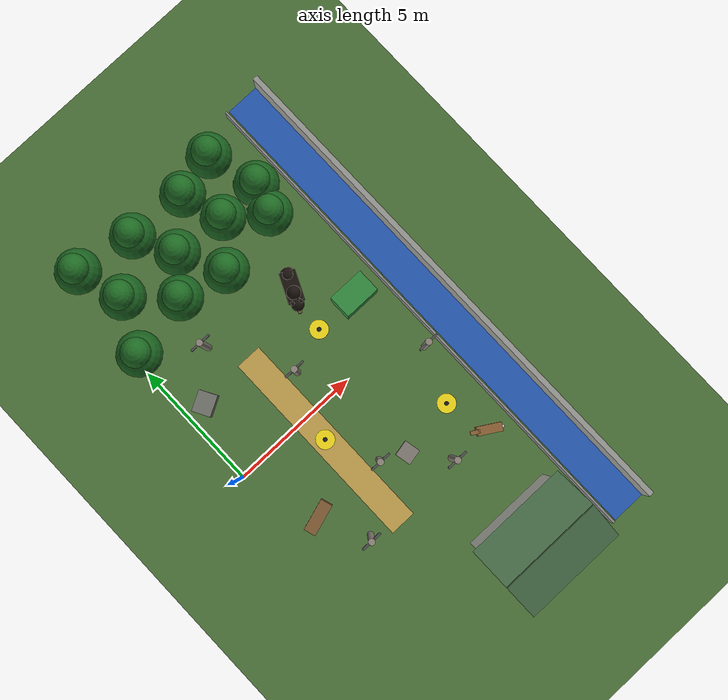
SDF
<sdf version="1.6">
 <world name="kumawatch_patrol">
  <model name="ground_plane">
   <static>true</static>
   <link name="link">
    <collision name="collision">
     <geometry><plane><normal>0 0 1</normal><size>60 60</size></plane></geometry>
     <surface><friction><ode><mu>100</mu><mu2>50</mu2></ode></friction></surface>
    </collision>
    <visual name="visual">
     <cast_shadows>false</cast_shadows>
     <geometry><plane><normal>0 0 1</normal><size>60 60</size></plane></geometry>
     <material><ambient>0.30 0.45 0.22 1</ambient><diffuse>0.30 0.45 0.22 1</diffuse></material>
    </visual>
   </link>
  </model>
  <model name="wall_east">
   <static>true</static>
   <pose>9.900 0.000 0.000 0.000 0.000 0.000</pose>
   <link name="link">
    <visual name="visual">
     <pose>0.000 0.000 0.500 0.000 0.000 0.000</pose>
     <geometry><box><size>0.200 20.000 1.000</size></box></geometry>
     <material>
      <ambient>0.600 0.600 0.580 1.00</ambient>
      <diffuse>0.600 0.600 0.580 1.00</diffuse>
      <specular>0.05 0.05 0.05 1</specular>
     </material>
    </visual>
    <collision name="collision">
     <pose>0.000 0.000 0.500 0.000 0.000 0.000</pose>
     <geometry><box><size>0.200 20.000 1.000</size></box></geometry>
    </collision>
   </link>
  </model>
  <model name="surface_school_route">
   <static>true</static>
   <pose>3.000 -1.000 0.000 0.000 0.000 0.000</pose>
   <link name="link">
    <visual name="visual">
     <pose>0.000 0.000 0.004 0.000 0.000 0.000</pose>
     <geometry><box><size>1.000 8.000 0.002</size></box></geometry>
     <material>
      <ambient>0.750 0.620 0.300 1.00</ambient>
      <diffuse>0.750 0.620 0.300 1.00</diffuse>
      <specular>0.05 0.05 0.05 1</specular>
     </material>
    </visual>
   </link>
  </model>
  <model name="surface_river">
   <static>true</static>
   <pose>9.250 0.000 0.000 0.000 0.000 0.000</pose>
   <link name="link">
    <visual name="visual">
     <pose>0.000 0.000 0.005 0.000 0.000 0.000</pose>
     <geometry><box><size>1.500 20.000 0.002</size></box></geometry>
     <material>
      <ambient>0.150 0.350 0.700 1.00</ambient>
      <diffuse>0.150 0.350 0.700 1.00</diffuse>
      <specular>0.05 0.05 0.05 1</specular>
     </material>
    </visual>
   </link>
  </model>
  <model name="school">
   <static>true</static>
   <pose>6.000 -8.300 0.000 0.000 0.000 0.000</pose>
   <link name="link">
    <visual name="walls">
     <pose>0.000 0.000 1.500 0.000 0.000 0.000</pose>
     <geometry><box><size>3.500 2.400 3.000</size></box></geometry>
     <material>
      <ambient>0.920 0.920 0.880 1.00</ambient>
      <diffuse>0.920 0.920 0.880 1.00</diffuse>
      <specular>0.05 0.05 0.05 1</specular>
     </material>
    </visual>
    <collision name="collision">
     <pose>0.000 0.000 1.500 0.000 0.000 0.000</pose>
     <geometry><box><size>3.500 2.400 3.000</size></box></geometry>
    </collision>
    <visual name="roof_0">
     <pose>0.000 0.700 3.382 -0.500 0.000 0.000</pose>
     <geometry><box><size>3.800 1.595 0.080</size></box></geometry>
     <material>
      <ambient>0.300 0.450 0.300 1.00</ambient>
      <diffuse>0.300 0.450 0.300 1.00</diffuse>
      <specular>0.05 0.05 0.05 1</specular>
     </material>
    </visual>
    <visual name="roof_1">
     <pose>0.000 -0.700 3.382 0.500 0.000 0.000</pose>
     <geometry><box><size>3.800 1.595 0.080</size></box></geometry>
     <material>
      <ambient>0.300 0.450 0.300 1.00</ambient>
      <diffuse>0.300 0.450 0.300 1.00</diffuse>
      <specular>0.05 0.05 0.05 1</specular>
     </material>
    </visual>
   </link>
  </model>
  <model name="tree_03">
   <static>true</static>
   <pose>0.460 5.350 0.000 0.000 0.000 0.000</pose>
   <link name="link">
    <visual name="trunk">
     <pose>0.000 0.000 0.800 0.000 0.000 0.000</pose>
     <geometry><cylinder><radius>0.180</radius><length>1.600</length></cylinder></geometry>
     <material>
      <ambient>0.350 0.220 0.100 1.00</ambient>
      <diffuse>0.350 0.220 0.100 1.00</diffuse>
      <specular>0.05 0.05 0.05 1</specular>
     </material>
    </visual>
    <collision name="collision">
     <pose>0.000 0.000 0.800 0.000 0.000 0.000</pose>
     <geometry><cylinder><radius>0.180</radius><length>1.600</length></cylinder></geometry>
    </collision>
    <visual name="canopy">
     <pose>0.000 0.000 2.080 0.000 0.000 0.000</pose>
     <geometry><sphere><radius>0.800</radius></sphere></geometry>
     <material>
      <ambient>0.100 0.380 0.120 1.00</ambient>
      <diffuse>0.100 0.380 0.120 1.00</diffuse>
      <specular>0.05 0.05 0.05 1</specular>
     </material>
    </visual>
    <visual name="canopy_top">
     <pose>0.000 0.000 2.720 0.000 0.000 0.000</pose>
     <geometry><sphere><radius>0.520</radius></sphere></geometry>
     <material>
      <ambient>0.120 0.420 0.140 1.00</ambient>
      <diffuse>0.120 0.420 0.140 1.00</diffuse>
      <specular>0.05 0.05 0.05 1</specular>
     </material>
    </visual>
   </link>
  </model>
  <model name="tree_04">
   <static>true</static>
   <pose>2.740 5.800 0.000 0.000 0.000 0.000</pose>
   <link name="link">
    <visual name="trunk">
     <pose>0.000 0.000 0.800 0.000 0.000 0.000</pose>
     <geometry><cylinder><radius>0.180</radius><length>1.600</length></cylinder></geometry>
     <material>
      <ambient>0.350 0.220 0.100 1.00</ambient>
      <diffuse>0.350 0.220 0.100 1.00</diffuse>
      <specular>0.05 0.05 0.05 1</specular>
     </material>
    </visual>
    <collision name="collision">
     <pose>0.000 0.000 0.800 0.000 0.000 0.000</pose>
     <geometry><cylinder><radius>0.180</radius><length>1.600</length></cylinder></geometry>
    </collision>
    <visual name="canopy">
     <pose>0.000 0.000 2.080 0.000 0.000 0.000</pose>
     <geometry><sphere><radius>0.800</radius></sphere></geometry>
     <material>
      <ambient>0.100 0.380 0.120 1.00</ambient>
      <diffuse>0.100 0.380 0.120 1.00</diffuse>
      <specular>0.05 0.05 0.05 1</specular>
     </material>
    </visual>
    <visual name="canopy_top">
     <pose>0.000 0.000 2.720 0.000 0.000 0.000</pose>
     <geometry><sphere><radius>0.520</radius></sphere></geometry>
     <material>
      <ambient>0.120 0.420 0.140 1.00</ambient>
      <diffuse>0.120 0.420 0.140 1.00</diffuse>
      <specular>0.05 0.05 0.05 1</specular>
     </material>
    </visual>
   </link>
  </model>
  <model name="tree_05">
   <static>true</static>
   <pose>4.500 5.430 0.000 0.000 0.000 0.000</pose>
   <link name="link">
    <visual name="trunk">
     <pose>0.000 0.000 0.800 0.000 0.000 0.000</pose>
     <geometry><cylinder><radius>0.180</radius><length>1.600</length></cylinder></geometry>
     <material>
      <ambient>0.350 0.220 0.100 1.00</ambient>
      <diffuse>0.350 0.220 0.100 1.00</diffuse>
      <specular>0.05 0.05 0.05 1</specular>
     </material>
    </visual>
    <collision name="collision">
     <pose>0.000 0.000 0.800 0.000 0.000 0.000</pose>
     <geometry><cylinder><radius>0.180</radius><length>1.600</length></cylinder></geometry>
    </collision>
    <visual name="canopy">
     <pose>0.000 0.000 2.080 0.000 0.000 0.000</pose>
     <geometry><sphere><radius>0.800</radius></sphere></geometry>
     <material>
      <ambient>0.100 0.380 0.120 1.00</ambient>
      <diffuse>0.100 0.380 0.120 1.00</diffuse>
      <specular>0.05 0.05 0.05 1</specular>
     </material>
    </visual>
    <visual name="canopy_top">
     <pose>0.000 0.000 2.720 0.000 0.000 0.000</pose>
     <geometry><sphere><radius>0.520</radius></sphere></geometry>
     <material>
      <ambient>0.120 0.420 0.140 1.00</ambient>
      <diffuse>0.120 0.420 0.140 1.00</diffuse>
      <specular>0.05 0.05 0.05 1</specular>
     </material>
    </visual>
   </link>
  </model>
  <model name="tree_06">
   <static>true</static>
   <pose>6.900 5.870 0.000 0.000 0.000 0.000</pose>
   <link name="link">
    <visual name="trunk">
     <pose>0.000 0.000 0.800 0.000 0.000 0.000</pose>
     <geometry><cylinder><radius>0.180</radius><length>1.600</length></cylinder></geometry>
     <material>
      <ambient>0.350 0.220 0.100 1.00</ambient>
      <diffuse>0.350 0.220 0.100 1.00</diffuse>
      <specular>0.05 0.05 0.05 1</specular>
     </material>
    </visual>
    <collision name="collision">
     <pose>0.000 0.000 0.800 0.000 0.000 0.000</pose>
     <geometry><cylinder><radius>0.180</radius><length>1.600</length></cylinder></geometry>
    </collision>
    <visual name="canopy">
     <pose>0.000 0.000 2.080 0.000 0.000 0.000</pose>
     <geometry><sphere><radius>0.800</radius></sphere></geometry>
     <material>
      <ambient>0.100 0.380 0.120 1.00</ambient>
      <diffuse>0.100 0.380 0.120 1.00</diffuse>
      <specular>0.05 0.05 0.05 1</specular>
     </material>
    </visual>
    <visual name="canopy_top">
     <pose>0.000 0.000 2.720 0.000 0.000 0.000</pose>
     <geometry><sphere><radius>0.520</radius></sphere></geometry>
     <material>
      <ambient>0.120 0.420 0.140 1.00</ambient>
      <diffuse>0.120 0.420 0.140 1.00</diffuse>
      <specular>0.05 0.05 0.05 1</specular>
     </material>
    </visual>
   </link>
  </model>
  <model name="tree_12">
   <static>true</static>
   <pose>1.340 7.150 0.000 0.000 0.000 0.000</pose>
   <link name="link">
    <visual name="trunk">
     <pose>0.000 0.000 0.800 0.000 0.000 0.000</pose>
     <geometry><cylinder><radius>0.180</radius><length>1.600</length></cylinder></geometry>
     <material>
      <ambient>0.350 0.220 0.100 1.00</ambient>
      <diffuse>0.350 0.220 0.100 1.00</diffuse>
      <specular>0.05 0.05 0.05 1</specular>
     </material>
    </visual>
    <collision name="collision">
     <pose>0.000 0.000 0.800 0.000 0.000 0.000</pose>
     <geometry><cylinder><radius>0.180</radius><length>1.600</length></cylinder></geometry>
    </collision>
    <visual name="canopy">
     <pose>0.000 0.000 2.080 0.000 0.000 0.000</pose>
     <geometry><sphere><radius>0.800</radius></sphere></geometry>
     <material>
      <ambient>0.100 0.380 0.120 1.00</ambient>
      <diffuse>0.100 0.380 0.120 1.00</diffuse>
      <specular>0.05 0.05 0.05 1</specular>
     </material>
    </visual>
    <visual name="canopy_top">
     <pose>0.000 0.000 2.720 0.000 0.000 0.000</pose>
     <geometry><sphere><radius>0.520</radius></sphere></geometry>
     <material>
      <ambient>0.120 0.420 0.140 1.00</ambient>
      <diffuse>0.120 0.420 0.140 1.00</diffuse>
      <specular>0.05 0.05 0.05 1</specular>
     </material>
    </visual>
   </link>
  </model>
  <model name="tree_13">
   <static>true</static>
   <pose>3.710 7.020 0.000 0.000 0.000 0.000</pose>
   <link name="link">
    <visual name="trunk">
     <pose>0.000 0.000 0.800 0.000 0.000 0.000</pose>
     <geometry><cylinder><radius>0.180</radius><length>1.600</length></cylinder></geometry>
     <material>
      <ambient>0.350 0.220 0.100 1.00</ambient>
      <diffuse>0.350 0.220 0.100 1.00</diffuse>
      <specular>0.05 0.05 0.05 1</specular>
     </material>
    </visual>
    <collision name="collision">
     <pose>0.000 0.000 0.800 0.000 0.000 0.000</pose>
     <geometry><cylinder><radius>0.180</radius><length>1.600</length></cylinder></geometry>
    </collision>
    <visual name="canopy">
     <pose>0.000 0.000 2.080 0.000 0.000 0.000</pose>
     <geometry><sphere><radius>0.800</radius></sphere></geometry>
     <material>
      <ambient>0.100 0.380 0.120 1.00</ambient>
      <diffuse>0.100 0.380 0.120 1.00</diffuse>
      <specular>0.05 0.05 0.05 1</specular>
     </material>
    </visual>
    <visual name="canopy_top">
     <pose>0.000 0.000 2.720 0.000 0.000 0.000</pose>
     <geometry><sphere><radius>0.520</radius></sphere></geometry>
     <material>
      <ambient>0.120 0.420 0.140 1.00</ambient>
      <diffuse>0.120 0.420 0.140 1.00</diffuse>
      <specular>0.05 0.05 0.05 1</specular>
     </material>
    </visual>
   </link>
  </model>
  <model name="tree_14">
   <static>true</static>
   <pose>5.640 6.840 0.000 0.000 0.000 0.000</pose>
   <link name="link">
    <visual name="trunk">
     <pose>0.000 0.000 0.800 0.000 0.000 0.000</pose>
     <geometry><cylinder><radius>0.180</radius><length>1.600</length></cylinder></geometry>
     <material>
      <ambient>0.350 0.220 0.100 1.00</ambient>
      <diffuse>0.350 0.220 0.100 1.00</diffuse>
      <specular>0.05 0.05 0.05 1</specular>
     </material>
    </visual>
    <collision name="collision">
     <pose>0.000 0.000 0.800 0.000 0.000 0.000</pose>
     <geometry><cylinder><radius>0.180</radius><length>1.600</length></cylinder></geometry>
    </collision>
    <visual name="canopy">
     <pose>0.000 0.000 2.080 0.000 0.000 0.000</pose>
     <geometry><sphere><radius>0.800</radius></sphere></geometry>
     <material>
      <ambient>0.100 0.380 0.120 1.00</ambient>
      <diffuse>0.100 0.380 0.120 1.00</diffuse>
      <specular>0.05 0.05 0.05 1</specular>
     </material>
    </visual>
    <visual name="canopy_top">
     <pose>0.000 0.000 2.720 0.000 0.000 0.000</pose>
     <geometry><sphere><radius>0.520</radius></sphere></geometry>
     <material>
      <ambient>0.120 0.420 0.140 1.00</ambient>
      <diffuse>0.120 0.420 0.140 1.00</diffuse>
      <specular>0.05 0.05 0.05 1</specular>
     </material>
    </visual>
   </link>
  </model>
  <model name="tree_15">
   <static>true</static>
   <pose>7.250 6.920 0.000 0.000 0.000 0.000</pose>
   <link name="link">
    <visual name="trunk">
     <pose>0.000 0.000 0.800 0.000 0.000 0.000</pose>
     <geometry><cylinder><radius>0.180</radius><length>1.600</length></cylinder></geometry>
     <material>
      <ambient>0.350 0.220 0.100 1.00</ambient>
      <diffuse>0.350 0.220 0.100 1.00</diffuse>
      <specular>0.05 0.05 0.05 1</specular>
     </material>
    </visual>
    <collision name="collision">
     <pose>0.000 0.000 0.800 0.000 0.000 0.000</pose>
     <geometry><cylinder><radius>0.180</radius><length>1.600</length></cylinder></geometry>
    </collision>
    <visual name="canopy">
     <pose>0.000 0.000 2.080 0.000 0.000 0.000</pose>
     <geometry><sphere><radius>0.800</radius></sphere></geometry>
     <material>
      <ambient>0.100 0.380 0.120 1.00</ambient>
      <diffuse>0.100 0.380 0.120 1.00</diffuse>
      <specular>0.05 0.05 0.05 1</specular>
     </material>
    </visual>
    <visual name="canopy_top">
     <pose>0.000 0.000 2.720 0.000 0.000 0.000</pose>
     <geometry><sphere><radius>0.520</radius></sphere></geometry>
     <material>
      <ambient>0.120 0.420 0.140 1.00</ambient>
      <diffuse>0.120 0.420 0.140 1.00</diffuse>
      <specular>0.05 0.05 0.05 1</specular>
     </material>
    </visual>
   </link>
  </model>
  <model name="tree_21">
   <static>true</static>
   <pose>0.820 8.830 0.000 0.000 0.000 0.000</pose>
   <link name="link">
    <visual name="trunk">
     <pose>0.000 0.000 0.800 0.000 0.000 0.000</pose>
     <geometry><cylinder><radius>0.180</radius><length>1.600</length></cylinder></geometry>
     <material>
      <ambient>0.350 0.220 0.100 1.00</ambient>
      <diffuse>0.350 0.220 0.100 1.00</diffuse>
      <specular>0.05 0.05 0.05 1</specular>
     </material>
    </visual>
    <collision name="collision">
     <pose>0.000 0.000 0.800 0.000 0.000 0.000</pose>
     <geometry><cylinder><radius>0.180</radius><length>1.600</length></cylinder></geometry>
    </collision>
    <visual name="canopy">
     <pose>0.000 0.000 2.080 0.000 0.000 0.000</pose>
     <geometry><sphere><radius>0.800</radius></sphere></geometry>
     <material>
      <ambient>0.100 0.380 0.120 1.00</ambient>
      <diffuse>0.100 0.380 0.120 1.00</diffuse>
      <specular>0.05 0.05 0.05 1</specular>
     </material>
    </visual>
    <visual name="canopy_top">
     <pose>0.000 0.000 2.720 0.000 0.000 0.000</pose>
     <geometry><sphere><radius>0.520</radius></sphere></geometry>
     <material>
      <ambient>0.120 0.420 0.140 1.00</ambient>
      <diffuse>0.120 0.420 0.140 1.00</diffuse>
      <specular>0.05 0.05 0.05 1</specular>
     </material>
    </visual>
   </link>
  </model>
  <model name="tree_22">
   <static>true</static>
   <pose>2.980 8.470 0.000 0.000 0.000 0.000</pose>
   <link name="link">
    <visual name="trunk">
     <pose>0.000 0.000 0.800 0.000 0.000 0.000</pose>
     <geometry><cylinder><radius>0.180</radius><length>1.600</length></cylinder></geometry>
     <material>
      <ambient>0.350 0.220 0.100 1.00</ambient>
      <diffuse>0.350 0.220 0.100 1.00</diffuse>
      <specular>0.05 0.05 0.05 1</specular>
     </material>
    </visual>
    <collision name="collision">
     <pose>0.000 0.000 0.800 0.000 0.000 0.000</pose>
     <geometry><cylinder><radius>0.180</radius><length>1.600</length></cylinder></geometry>
    </collision>
    <visual name="canopy">
     <pose>0.000 0.000 2.080 0.000 0.000 0.000</pose>
     <geometry><sphere><radius>0.800</radius></sphere></geometry>
     <material>
      <ambient>0.100 0.380 0.120 1.00</ambient>
      <diffuse>0.100 0.380 0.120 1.00</diffuse>
      <specular>0.05 0.05 0.05 1</specular>
     </material>
    </visual>
    <visual name="canopy_top">
     <pose>0.000 0.000 2.720 0.000 0.000 0.000</pose>
     <geometry><sphere><radius>0.520</radius></sphere></geometry>
     <material>
      <ambient>0.120 0.420 0.140 1.00</ambient>
      <diffuse>0.120 0.420 0.140 1.00</diffuse>
      <specular>0.05 0.05 0.05 1</specular>
     </material>
    </visual>
   </link>
  </model>
  <model name="tree_23">
   <static>true</static>
   <pose>5.180 8.370 0.000 0.000 0.000 0.000</pose>
   <link name="link">
    <visual name="trunk">
     <pose>0.000 0.000 0.800 0.000 0.000 0.000</pose>
     <geometry><cylinder><radius>0.180</radius><length>1.600</length></cylinder></geometry>
     <material>
      <ambient>0.350 0.220 0.100 1.00</ambient>
      <diffuse>0.350 0.220 0.100 1.00</diffuse>
      <specular>0.05 0.05 0.05 1</specular>
     </material>
    </visual>
    <collision name="collision">
     <pose>0.000 0.000 0.800 0.000 0.000 0.000</pose>
     <geometry><cylinder><radius>0.180</radius><length>1.600</length></cylinder></geometry>
    </collision>
    <visual name="canopy">
     <pose>0.000 0.000 2.080 0.000 0.000 0.000</pose>
     <geometry><sphere><radius>0.800</radius></sphere></geometry>
     <material>
      <ambient>0.100 0.380 0.120 1.00</ambient>
      <diffuse>0.100 0.380 0.120 1.00</diffuse>
      <specular>0.05 0.05 0.05 1</specular>
     </material>
    </visual>
    <visual name="canopy_top">
     <pose>0.000 0.000 2.720 0.000 0.000 0.000</pose>
     <geometry><sphere><radius>0.520</radius></sphere></geometry>
     <material>
      <ambient>0.120 0.420 0.140 1.00</ambient>
      <diffuse>0.120 0.420 0.140 1.00</diffuse>
      <specular>0.05 0.05 0.05 1</specular>
     </material>
    </visual>
   </link>
  </model>
  <model name="tree_24">
   <static>true</static>
   <pose>6.730 8.750 0.000 0.000 0.000 0.000</pose>
   <link name="link">
    <visual name="trunk">
     <pose>0.000 0.000 0.800 0.000 0.000 0.000</pose>
     <geometry><cylinder><radius>0.180</radius><length>1.600</length></cylinder></geometry>
     <material>
      <ambient>0.350 0.220 0.100 1.00</ambient>
      <diffuse>0.350 0.220 0.100 1.00</diffuse>
      <specular>0.05 0.05 0.05 1</specular>
     </material>
    </visual>
    <collision name="collision">
     <pose>0.000 0.000 0.800 0.000 0.000 0.000</pose>
     <geometry><cylinder><radius>0.180</radius><length>1.600</length></cylinder></geometry>
    </collision>
    <visual name="canopy">
     <pose>0.000 0.000 2.080 0.000 0.000 0.000</pose>
     <geometry><sphere><radius>0.800</radius></sphere></geometry>
     <material>
      <ambient>0.100 0.380 0.120 1.00</ambient>
      <diffuse>0.100 0.380 0.120 1.00</diffuse>
      <specular>0.05 0.05 0.05 1</specular>
     </material>
    </visual>
    <visual name="canopy_top">
     <pose>0.000 0.000 2.720 0.000 0.000 0.000</pose>
     <geometry><sphere><radius>0.520</radius></sphere></geometry>
     <material>
      <ambient>0.120 0.420 0.140 1.00</ambient>
      <diffuse>0.120 0.420 0.140 1.00</diffuse>
      <specular>0.05 0.05 0.05 1</specular>
     </material>
    </visual>
   </link>
  </model>
  <model name="pole_02">
   <static>true</static>
   <pose>1.900 -4.500 0.000 0.000 0.000 0.000</pose>
   <link name="link">
    <visual name="pole">
     <pose>0.000 0.000 1.200 0.000 0.000 0.000</pose>
     <geometry><cylinder><radius>0.120</radius><length>2.400</length></cylinder></geometry>
     <material>
      <ambient>0.550 0.520 0.480 1.00</ambient>
      <diffuse>0.550 0.520 0.480 1.00</diffuse>
      <specular>0.05 0.05 0.05 1</specular>
     </material>
    </visual>
    <collision name="collision">
     <pose>0.000 0.000 1.200 0.000 0.000 0.000</pose>
     <geometry><cylinder><radius>0.120</radius><length>2.400</length></cylinder></geometry>
    </collision>
    <visual name="crossarm">
     <pose>0.000 0.000 2.200 0.000 0.000 0.000</pose>
     <geometry><box><size>0.800 0.080 0.080</size></box></geometry>
     <material>
      <ambient>0.300 0.300 0.300 1.00</ambient>
      <diffuse>0.300 0.300 0.300 1.00</diffuse>
      <specular>0.05 0.05 0.05 1</specular>
     </material>
    </visual>
   </link>
  </model>
  <model name="pole_03">
   <static>true</static>
   <pose>5.800 -4.500 0.000 0.000 0.000 0.000</pose>
   <link name="link">
    <visual name="pole">
     <pose>0.000 0.000 1.200 0.000 0.000 0.000</pose>
     <geometry><cylinder><radius>0.120</radius><length>2.400</length></cylinder></geometry>
     <material>
      <ambient>0.550 0.520 0.480 1.00</ambient>
      <diffuse>0.550 0.520 0.480 1.00</diffuse>
      <specular>0.05 0.05 0.05 1</specular>
     </material>
    </visual>
    <collision name="collision">
     <pose>0.000 0.000 1.200 0.000 0.000 0.000</pose>
     <geometry><cylinder><radius>0.120</radius><length>2.400</length></cylinder></geometry>
    </collision>
    <visual name="crossarm">
     <pose>0.000 0.000 2.200 0.000 0.000 0.000</pose>
     <geometry><box><size>0.800 0.080 0.080</size></box></geometry>
     <material>
      <ambient>0.300 0.300 0.300 1.00</ambient>
      <diffuse>0.300 0.300 0.300 1.00</diffuse>
      <specular>0.05 0.05 0.05 1</specular>
     </material>
    </visual>
   </link>
  </model>
  <model name="pole_04">
   <static>true</static>
   <pose>3.900 -2.800 0.000 0.000 0.000 0.000</pose>
   <link name="link">
    <visual name="pole">
     <pose>0.000 0.000 1.200 0.000 0.000 0.000</pose>
     <geometry><cylinder><radius>0.120</radius><length>2.400</length></cylinder></geometry>
     <material>
      <ambient>0.550 0.520 0.480 1.00</ambient>
      <diffuse>0.550 0.520 0.480 1.00</diffuse>
      <specular>0.05 0.05 0.05 1</specular>
     </material>
    </visual>
    <collision name="collision">
     <pose>0.000 0.000 1.200 0.000 0.000 0.000</pose>
     <geometry><cylinder><radius>0.120</radius><length>2.400</length></cylinder></geometry>
    </collision>
    <visual name="crossarm">
     <pose>0.000 0.000 2.200 0.000 0.000 0.000</pose>
     <geometry><box><size>0.800 0.080 0.080</size></box></geometry>
     <material>
      <ambient>0.300 0.300 0.300 1.00</ambient>
      <diffuse>0.300 0.300 0.300 1.00</diffuse>
      <specular>0.05 0.05 0.05 1</specular>
     </material>
    </visual>
   </link>
  </model>
  <model name="pole_05">
   <static>true</static>
   <pose>3.900 1.400 0.000 0.000 0.000 0.000</pose>
   <link name="link">
    <visual name="pole">
     <pose>0.000 0.000 1.200 0.000 0.000 0.000</pose>
     <geometry><cylinder><radius>0.120</radius><length>2.400</length></cylinder></geometry>
     <material>
      <ambient>0.550 0.520 0.480 1.00</ambient>
      <diffuse>0.550 0.520 0.480 1.00</diffuse>
      <specular>0.05 0.05 0.05 1</specular>
     </material>
    </visual>
    <collision name="collision">
     <pose>0.000 0.000 1.200 0.000 0.000 0.000</pose>
     <geometry><cylinder><radius>0.120</radius><length>2.400</length></cylinder></geometry>
    </collision>
    <visual name="crossarm">
     <pose>0.000 0.000 2.200 0.000 0.000 0.000</pose>
     <geometry><box><size>0.800 0.080 0.080</size></box></geometry>
     <material>
      <ambient>0.300 0.300 0.300 1.00</ambient>
      <diffuse>0.300 0.300 0.300 1.00</diffuse>
      <specular>0.05 0.05 0.05 1</specular>
     </material>
    </visual>
   </link>
  </model>
  <model name="pole_08">
   <static>true</static>
   <pose>2.200 4.200 0.000 0.000 0.000 0.000</pose>
   <link name="link">
    <visual name="pole">
     <pose>0.000 0.000 1.200 0.000 0.000 0.000</pose>
     <geometry><cylinder><radius>0.120</radius><length>2.400</length></cylinder></geometry>
     <material>
      <ambient>0.550 0.520 0.480 1.00</ambient>
      <diffuse>0.550 0.520 0.480 1.00</diffuse>
      <specular>0.05 0.05 0.05 1</specular>
     </material>
    </visual>
    <collision name="collision">
     <pose>0.000 0.000 1.200 0.000 0.000 0.000</pose>
     <geometry><cylinder><radius>0.120</radius><length>2.400</length></cylinder></geometry>
    </collision>
    <visual name="crossarm">
     <pose>0.000 0.000 2.200 0.000 0.000 0.000</pose>
     <geometry><box><size>0.800 0.080 0.080</size></box></geometry>
     <material>
      <ambient>0.300 0.300 0.300 1.00</ambient>
      <diffuse>0.300 0.300 0.300 1.00</diffuse>
      <specular>0.05 0.05 0.05 1</specular>
     </material>
    </visual>
   </link>
  </model>
  <model name="pole_09">
   <static>true</static>
   <pose>7.800 -1.000 0.000 0.000 0.000 0.000</pose>
   <link name="link">
    <visual name="pole">
     <pose>0.000 0.000 1.200 0.000 0.000 0.000</pose>
     <geometry><cylinder><radius>0.120</radius><length>2.400</length></cylinder></geometry>
     <material>
      <ambient>0.550 0.520 0.480 1.00</ambient>
      <diffuse>0.550 0.520 0.480 1.00</diffuse>
      <specular>0.05 0.05 0.05 1</specular>
     </material>
    </visual>
    <collision name="collision">
     <pose>0.000 0.000 1.200 0.000 0.000 0.000</pose>
     <geometry><cylinder><radius>0.120</radius><length>2.400</length></cylinder></geometry>
    </collision>
    <visual name="crossarm">
     <pose>0.000 0.000 2.200 0.000 0.000 0.000</pose>
     <geometry><box><size>0.800 0.080 0.080</size></box></geometry>
     <material>
      <ambient>0.300 0.300 0.300 1.00</ambient>
      <diffuse>0.300 0.300 0.300 1.00</diffuse>
      <specular>0.05 0.05 0.05 1</specular>
     </material>
    </visual>
   </link>
  </model>
  <model name="river_fence">
   <static>true</static>
   <pose>8.350 0.000 0.000 0.000 0.000 1.571</pose>
   <link name="link">
    <visual name="visual">
     <pose>0.000 0.000 0.300 0.000 0.000 0.000</pose>
     <geometry><box><size>19.800 0.080 0.600</size></box></geometry>
     <material>
      <ambient>0.550 0.550 0.550 1.00</ambient>
      <diffuse>0.550 0.550 0.550 1.00</diffuse>
      <specular>0.05 0.05 0.05 1</specular>
     </material>
    </visual>
    <collision name="collision">
     <pose>0.000 0.000 0.300 0.000 0.000 0.000</pose>
     <geometry><box><size>19.800 0.080 0.600</size></box></geometry>
    </collision>
   </link>
  </model>
  <model name="garbage_station">
   <static>true</static>
   <pose>7.200 2.000 0.000 0.000 0.000 0.000</pose>
   <link name="link">
    <visual name="visual">
     <pose>0.000 0.000 0.500 0.000 0.000 0.000</pose>
     <geometry><box><size>1.400 0.900 1.000</size></box></geometry>
     <material>
      <ambient>0.200 0.550 0.250 1.00</ambient>
      <diffuse>0.200 0.550 0.250 1.00</diffuse>
      <specular>0.05 0.05 0.05 1</specular>
     </material>
    </visual>
    <collision name="collision">
     <pose>0.000 0.000 0.500 0.000 0.000 0.000</pose>
     <geometry><box><size>1.400 0.900 1.000</size></box></geometry>
    </collision>
   </link>
  </model>
  <model name="rock_1">
   <static>true</static>
   <pose>0.800 2.800 0.000 0.000 0.000 0.500</pose>
   <link name="link">
    <visual name="visual">
     <pose>0.000 0.000 0.250 0.000 0.000 0.000</pose>
     <geometry><box><size>0.800 0.700 0.500</size></box></geometry>
     <material>
      <ambient>0.450 0.450 0.420 1.00</ambient>
      <diffuse>0.450 0.450 0.420 1.00</diffuse>
      <specular>0.05 0.05 0.05 1</specular>
     </material>
    </visual>
    <collision name="collision">
     <pose>0.000 0.000 0.250 0.000 0.000 0.000</pose>
     <geometry><box><size>0.800 0.700 0.500</size></box></geometry>
    </collision>
   </link>
  </model>
  <model name="rock_2">
   <static>true</static>
   <pose>4.800 -3.300 0.000 0.000 0.000 0.200</pose>
   <link name="link">
    <visual name="visual">
     <pose>0.000 0.000 0.200 0.000 0.000 0.000</pose>
     <geometry><box><size>0.600 0.600 0.400</size></box></geometry>
     <material>
      <ambient>0.500 0.480 0.450 1.00</ambient>
      <diffuse>0.500 0.480 0.450 1.00</diffuse>
      <specular>0.05 0.05 0.05 1</specular>
     </material>
    </visual>
    <collision name="collision">
     <pose>0.000 0.000 0.200 0.000 0.000 0.000</pose>
     <geometry><box><size>0.600 0.600 0.400</size></box></geometry>
    </collision>
   </link>
  </model>
  <model name="bench_2">
   <static>true</static>
   <pose>1.000 -2.800 0.000 0.000 0.000 0.300</pose>
   <link name="link">
    <visual name="visual">
     <pose>0.000 0.000 0.225 0.000 0.000 0.000</pose>
     <geometry><box><size>1.200 0.450 0.450</size></box></geometry>
     <material>
      <ambient>0.500 0.350 0.200 1.00</ambient>
      <diffuse>0.500 0.350 0.200 1.00</diffuse>
      <specular>0.05 0.05 0.05 1</specular>
     </material>
    </visual>
    <collision name="collision">
     <pose>0.000 0.000 0.225 0.000 0.000 0.000</pose>
     <geometry><box><size>1.200 0.450 0.450</size></box></geometry>
    </collision>
   </link>
  </model>
  <model name="bear_2">
   <static>true</static>
   <pose>5.800 3.700 0.000 0.000 0.000 -2.000</pose>
   <link name="link">
    <visual name="body">
     <pose>0.000 0.000 0.620 0.000 0.000 0.000</pose>
     <geometry><box><size>1.100 0.600 0.550</size></box></geometry>
     <material>
      <ambient>0.100 0.070 0.050 1.00</ambient>
      <diffuse>0.100 0.070 0.050 1.00</diffuse>
      <specular>0.05 0.05 0.05 1</specular>
     </material>
    </visual>
    <visual name="hump">
     <pose>0.250 0.000 0.880 0.000 0.000 0.000</pose>
     <geometry><sphere><radius>0.260</radius></sphere></geometry>
     <material>
      <ambient>0.100 0.070 0.050 1.00</ambient>
      <diffuse>0.100 0.070 0.050 1.00</diffuse>
      <specular>0.05 0.05 0.05 1</specular>
     </material>
    </visual>
    <visual name="rump">
     <pose>-0.420 0.000 0.660 0.000 0.000 0.000</pose>
     <geometry><sphere><radius>0.300</radius></sphere></geometry>
     <material>
      <ambient>0.100 0.070 0.050 1.00</ambient>
      <diffuse>0.100 0.070 0.050 1.00</diffuse>
      <specular>0.05 0.05 0.05 1</specular>
     </material>
    </visual>
    <visual name="head">
     <pose>0.680 0.000 0.820 0.000 0.000 0.000</pose>
     <geometry><sphere><radius>0.240</radius></sphere></geometry>
     <material>
      <ambient>0.100 0.070 0.050 1.00</ambient>
      <diffuse>0.100 0.070 0.050 1.00</diffuse>
      <specular>0.05 0.05 0.05 1</specular>
     </material>
    </visual>
    <visual name="muzzle">
     <pose>0.900 0.000 0.760 0.000 0.000 0.000</pose>
     <geometry><box><size>0.180 0.140 0.120</size></box></geometry>
     <material>
      <ambient>0.450 0.330 0.220 1.00</ambient>
      <diffuse>0.450 0.330 0.220 1.00</diffuse>
      <specular>0.05 0.05 0.05 1</specular>
     </material>
    </visual>
    <visual name="nose">
     <pose>0.990 0.000 0.780 0.000 0.000 0.000</pose>
     <geometry><sphere><radius>0.035</radius></sphere></geometry>
     <material>
      <ambient>0.020 0.020 0.020 1.00</ambient>
      <diffuse>0.020 0.020 0.020 1.00</diffuse>
      <specular>0.05 0.05 0.05 1</specular>
     </material>
    </visual>
    <visual name="ear_l">
     <pose>0.620 0.150 1.020 0.000 0.000 0.000</pose>
     <geometry><sphere><radius>0.070</radius></sphere></geometry>
     <material>
      <ambient>0.100 0.070 0.050 1.00</ambient>
      <diffuse>0.100 0.070 0.050 1.00</diffuse>
      <specular>0.05 0.05 0.05 1</specular>
     </material>
    </visual>
    <visual name="ear_r">
     <pose>0.620 -0.150 1.020 0.000 0.000 0.000</pose>
     <geometry><sphere><radius>0.070</radius></sphere></geometry>
     <material>
      <ambient>0.100 0.070 0.050 1.00</ambient>
      <diffuse>0.100 0.070 0.050 1.00</diffuse>
      <specular>0.05 0.05 0.05 1</specular>
     </material>
    </visual>
    <visual name="eye_l">
     <pose>0.860 0.090 0.880 0.000 0.000 0.000</pose>
     <geometry><sphere><radius>0.025</radius></sphere></geometry>
     <material>
      <ambient>0.000 0.000 0.000 1.00</ambient>
      <diffuse>0.000 0.000 0.000 1.00</diffuse>
      <specular>0.05 0.05 0.05 1</specular>
     </material>
    </visual>
    <visual name="eye_r">
     <pose>0.860 -0.090 0.880 0.000 0.000 0.000</pose>
     <geometry><sphere><radius>0.025</radius></sphere></geometry>
     <material>
      <ambient>0.000 0.000 0.000 1.00</ambient>
      <diffuse>0.000 0.000 0.000 1.00</diffuse>
      <specular>0.05 0.05 0.05 1</specular>
     </material>
    </visual>
    <visual name="chest_mark">
     <pose>0.560 0.000 0.600 0.000 0.000 0.000</pose>
     <geometry><box><size>0.040 0.400 0.100</size></box></geometry>
     <material>
      <ambient>0.850 0.820 0.750 1.00</ambient>
      <diffuse>0.850 0.820 0.750 1.00</diffuse>
      <specular>0.05 0.05 0.05 1</specular>
     </material>
    </visual>
    <visual name="leg_0">
     <pose>0.380 0.200 0.200 0.000 0.000 0.000</pose>
     <geometry><cylinder><radius>0.090</radius><length>0.400</length></cylinder></geometry>
     <material>
      <ambient>0.100 0.070 0.050 1.00</ambient>
      <diffuse>0.100 0.070 0.050 1.00</diffuse>
      <specular>0.05 0.05 0.05 1</specular>
     </material>
    </visual>
    <visual name="leg_1">
     <pose>0.380 -0.200 0.200 0.000 0.000 0.000</pose>
     <geometry><cylinder><radius>0.090</radius><length>0.400</length></cylinder></geometry>
     <material>
      <ambient>0.100 0.070 0.050 1.00</ambient>
      <diffuse>0.100 0.070 0.050 1.00</diffuse>
      <specular>0.05 0.05 0.05 1</specular>
     </material>
    </visual>
    <visual name="leg_2">
     <pose>-0.380 0.200 0.200 0.000 0.000 0.000</pose>
     <geometry><cylinder><radius>0.090</radius><length>0.400</length></cylinder></geometry>
     <material>
      <ambient>0.100 0.070 0.050 1.00</ambient>
      <diffuse>0.100 0.070 0.050 1.00</diffuse>
      <specular>0.05 0.05 0.05 1</specular>
     </material>
    </visual>
    <visual name="leg_3">
     <pose>-0.380 -0.200 0.200 0.000 0.000 0.000</pose>
     <geometry><cylinder><radius>0.090</radius><length>0.400</length></cylinder></geometry>
     <material>
      <ambient>0.100 0.070 0.050 1.00</ambient>
      <diffuse>0.100 0.070 0.050 1.00</diffuse>
      <specular>0.05 0.05 0.05 1</specular>
     </material>
    </visual>
    <collision name="collision">
     <pose>0.050 0.000 0.500 0.000 0.000 0.000</pose>
     <geometry><box><size>1.300 0.600 1.000</size></box></geometry>
    </collision>
   </link>
  </model>
  <model name="deer_1">
   <static>true</static>
   <pose>7.400 -4.600 0.000 0.000 0.000 2.600</pose>
   <link name="link">
    <visual name="body">
     <pose>0.000 0.000 0.850 0.000 0.000 0.000</pose>
     <geometry><box><size>0.900 0.320 0.350</size></box></geometry>
     <material>
      <ambient>0.550 0.380 0.200 1.00</ambient>
      <diffuse>0.550 0.380 0.200 1.00</diffuse>
      <specular>0.05 0.05 0.05 1</specular>
     </material>
    </visual>
    <visual name="neck">
     <pose>0.450 0.000 1.100 0.000 0.000 0.000</pose>
     <geometry><box><size>0.140 0.140 0.450</size></box></geometry>
     <material>
      <ambient>0.550 0.380 0.200 1.00</ambient>
      <diffuse>0.550 0.380 0.200 1.00</diffuse>
      <specular>0.05 0.05 0.05 1</specular>
     </material>
    </visual>
    <visual name="head">
     <pose>0.580 0.000 1.330 0.000 0.000 0.000</pose>
     <geometry><box><size>0.280 0.140 0.140</size></box></geometry>
     <material>
      <ambient>0.550 0.380 0.200 1.00</ambient>
      <diffuse>0.550 0.380 0.200 1.00</diffuse>
      <specular>0.05 0.05 0.05 1</specular>
     </material>
    </visual>
    <visual name="tail">
     <pose>-0.470 0.000 0.950 0.000 0.000 0.000</pose>
     <geometry><sphere><radius>0.060</radius></sphere></geometry>
     <material>
      <ambient>0.900 0.900 0.900 1.00</ambient>
      <diffuse>0.900 0.900 0.900 1.00</diffuse>
      <specular>0.05 0.05 0.05 1</specular>
     </material>
    </visual>
    <visual name="leg_0">
     <pose>0.350 0.100 0.340 0.000 0.000 0.000</pose>
     <geometry><cylinder><radius>0.035</radius><length>0.680</length></cylinder></geometry>
     <material>
      <ambient>0.550 0.380 0.200 1.00</ambient>
      <diffuse>0.550 0.380 0.200 1.00</diffuse>
      <specular>0.05 0.05 0.05 1</specular>
     </material>
    </visual>
    <visual name="leg_1">
     <pose>0.350 -0.100 0.340 0.000 0.000 0.000</pose>
     <geometry><cylinder><radius>0.035</radius><length>0.680</length></cylinder></geometry>
     <material>
      <ambient>0.550 0.380 0.200 1.00</ambient>
      <diffuse>0.550 0.380 0.200 1.00</diffuse>
      <specular>0.05 0.05 0.05 1</specular>
     </material>
    </visual>
    <visual name="leg_2">
     <pose>-0.350 0.100 0.340 0.000 0.000 0.000</pose>
     <geometry><cylinder><radius>0.035</radius><length>0.680</length></cylinder></geometry>
     <material>
      <ambient>0.550 0.380 0.200 1.00</ambient>
      <diffuse>0.550 0.380 0.200 1.00</diffuse>
      <specular>0.05 0.05 0.05 1</specular>
     </material>
    </visual>
    <visual name="leg_3">
     <pose>-0.350 -0.100 0.340 0.000 0.000 0.000</pose>
     <geometry><cylinder><radius>0.035</radius><length>0.680</length></cylinder></geometry>
     <material>
      <ambient>0.550 0.380 0.200 1.00</ambient>
      <diffuse>0.550 0.380 0.200 1.00</diffuse>
      <specular>0.05 0.05 0.05 1</specular>
     </material>
    </visual>
    <collision name="collision">
     <pose>0.100 0.000 0.600 0.000 0.000 0.000</pose>
     <geometry><box><size>1.000 0.350 1.200</size></box></geometry>
    </collision>
   </link>
  </model>
  <model name="patrol_point_P3">
   <static>true</static>
   <pose>3.000 -1.000 0.000 0.000 0.000 0.000</pose>
   <link name="link">
    <visual name="disc">
     <pose>0.000 0.000 0.006 0.000 0.000 0.000</pose>
     <geometry><cylinder><radius>0.350</radius><length>0.004</length></cylinder></geometry>
     <material>
      <ambient>0.950 0.850 0.100 1.00</ambient>
      <diffuse>0.950 0.850 0.100 1.00</diffuse>
      <specular>0.05 0.05 0.05 1</specular>
     </material>
    </visual>
    <visual name="center">
     <pose>0.000 0.000 0.008 0.000 0.000 0.000</pose>
     <geometry><cylinder><radius>0.080</radius><length>0.004</length></cylinder></geometry>
     <material>
      <ambient>0.100 0.100 0.100 1.00</ambient>
      <diffuse>0.100 0.100 0.100 1.00</diffuse>
      <specular>0.05 0.05 0.05 1</specular>
     </material>
    </visual>
   </link>
  </model>
  <model name="patrol_point_P4">
   <static>true</static>
   <pose>5.500 2.000 0.000 0.000 0.000 0.000</pose>
   <link name="link">
    <visual name="disc">
     <pose>0.000 0.000 0.006 0.000 0.000 0.000</pose>
     <geometry><cylinder><radius>0.350</radius><length>0.004</length></cylinder></geometry>
     <material>
      <ambient>0.950 0.850 0.100 1.00</ambient>
      <diffuse>0.950 0.850 0.100 1.00</diffuse>
      <specular>0.05 0.05 0.05 1</specular>
     </material>
    </visual>
    <visual name="center">
     <pose>0.000 0.000 0.008 0.000 0.000 0.000</pose>
     <geometry><cylinder><radius>0.080</radius><length>0.004</length></cylinder></geometry>
     <material>
      <ambient>0.100 0.100 0.100 1.00</ambient>
      <diffuse>0.100 0.100 0.100 1.00</diffuse>
      <specular>0.05 0.05 0.05 1</specular>
     </material>
    </visual>
   </link>
  </model>
  <model name="patrol_point_P5">
   <static>true</static>
   <pose>7.000 -3.000 0.000 0.000 0.000 0.000</pose>
   <link name="link">
    <visual name="disc">
     <pose>0.000 0.000 0.006 0.000 0.000 0.000</pose>
     <geometry><cylinder><radius>0.350</radius><length>0.004</length></cylinder></geometry>
     <material>
      <ambient>0.950 0.850 0.100 1.00</ambient>
      <diffuse>0.950 0.850 0.100 1.00</diffuse>
      <specular>0.05 0.05 0.05 1</specular>
     </material>
    </visual>
    <visual name="center">
     <pose>0.000 0.000 0.008 0.000 0.000 0.000</pose>
     <geometry><cylinder><radius>0.080</radius><length>0.004</length></cylinder></geometry>
     <material>
      <ambient>0.100 0.100 0.100 1.00</ambient>
      <diffuse>0.100 0.100 0.100 1.00</diffuse>
      <specular>0.05 0.05 0.05 1</specular>
     </material>
    </visual>
   </link>
  </model>
 </world>
</sdf>
